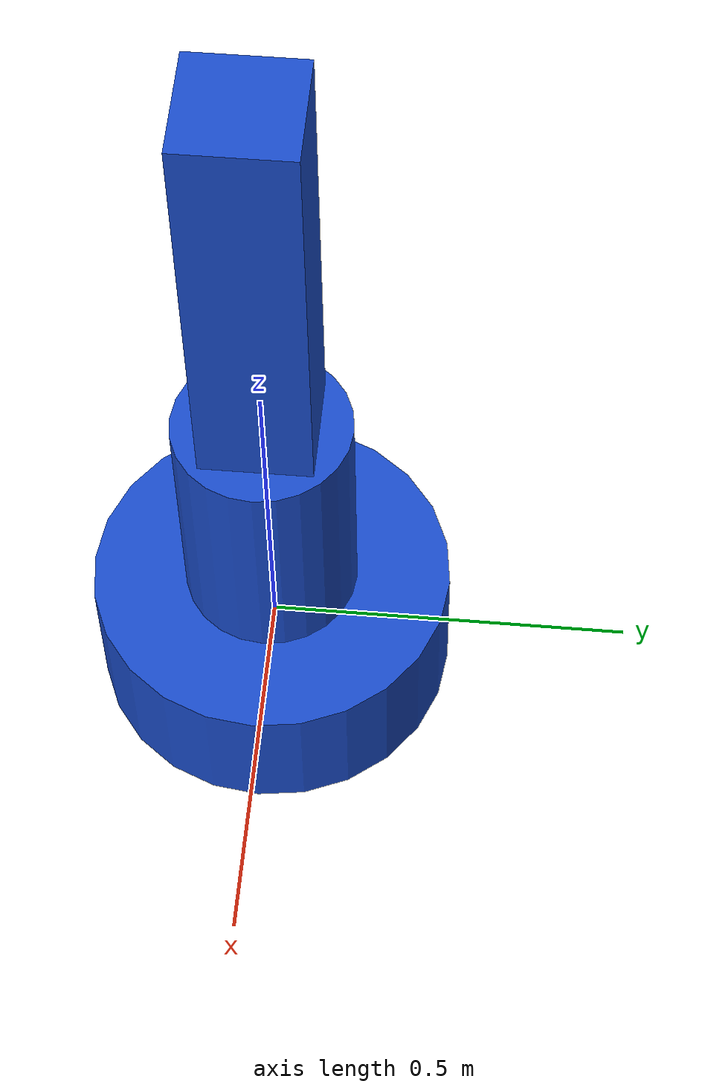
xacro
<?xml version="1.0"?>

<robot xmlns:xacro="http://www.ros.org/wiki/xacro"
       name="robot_arm">

  <!-- Materials -->

  <material name="blue">
    <color rgba="0.1 0.3 0.8 1"/>
  </material>

  <!-- Base -->

  <link name="base_link">

    <visual>
      <geometry>
        <cylinder radius="0.25" length="0.2"/>
      </geometry>
      <material name="blue"/>
    </visual>

    <collision>
      <geometry>
        <cylinder radius="0.25" length="0.2"/>
      </geometry>
    </collision>

    <inertial>
      <mass value="5"/>
      <inertia ixx="0.1" ixy="0" ixz="0"
               iyy="0.1" iyz="0"
               izz="0.1"/>
    </inertial>

  </link>

  <!-- Joint 1 -->

  <joint name="shoulder_joint"
         type="revolute">

    <parent link="base_link"/>
    <child link="shoulder_link"/>

    <origin xyz="0 0 0.2"
            rpy="0 0 0"/>

    <axis xyz="0 0 1"/>

    <limit lower="-3.14"
           upper="3.14"
           effort="100"
           velocity="2"/>

  </joint>

  <link name="shoulder_link">

    <visual>
      <geometry>
        <cylinder radius="0.12" length="0.5"/>
      </geometry>
      <material name="blue"/>
    </visual>

    <collision>
      <geometry>
        <cylinder radius="0.12" length="0.5"/>
      </geometry>
    </collision>

    <inertial>
      <mass value="2"/>
      <inertia ixx="0.05" ixy="0" ixz="0"
               iyy="0.05" iyz="0"
               izz="0.05"/>
    </inertial>

  </link>

  <!-- Joint 2 -->

  <joint name="elbow_joint"
         type="revolute">

    <parent link="shoulder_link"/>
    <child link="upper_arm_link"/>

    <origin xyz="0 0 0.5"/>

    <axis xyz="0 1 0"/>

    <limit lower="-2.5"
           upper="2.5"
           effort="100"
           velocity="2"/>

  </joint>

  <link name="upper_arm_link">

    <visual>
      <geometry>
        <box size="0.15 0.15 0.7"/>
      </geometry>
      <material name="blue"/>
    </visual>

    <collision>
      <geometry>
        <box size="0.15 0.15 0.7"/>
      </geometry>
    </collision>

    <inertial>
      <mass value="2"/>
      <inertia ixx="0.08" ixy="0" ixz="0"
               iyy="0.08" iyz="0"
               izz="0.08"/>
    </inertial>

  </link>

</robot>
